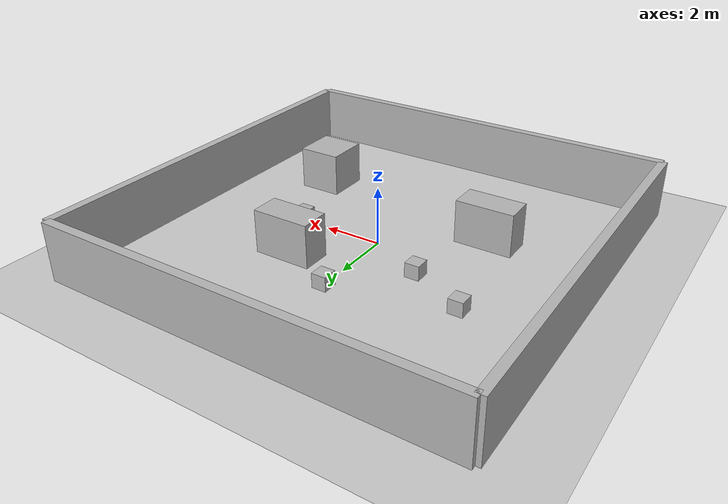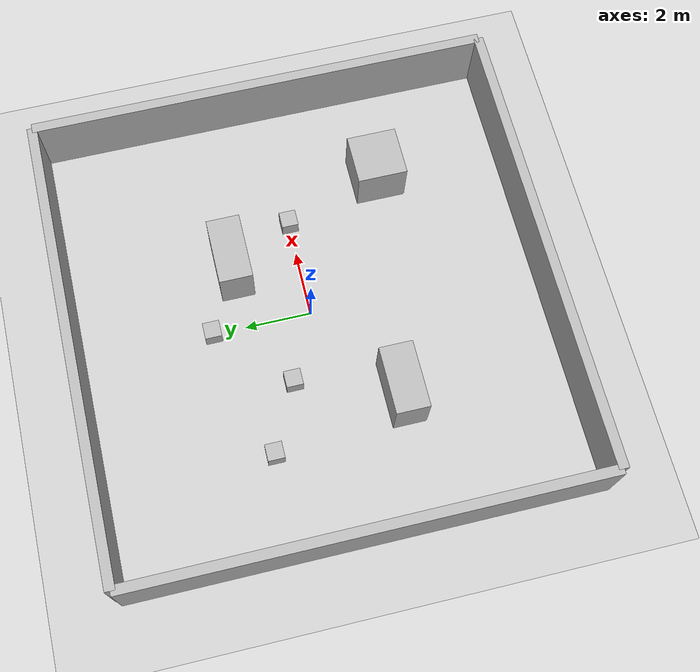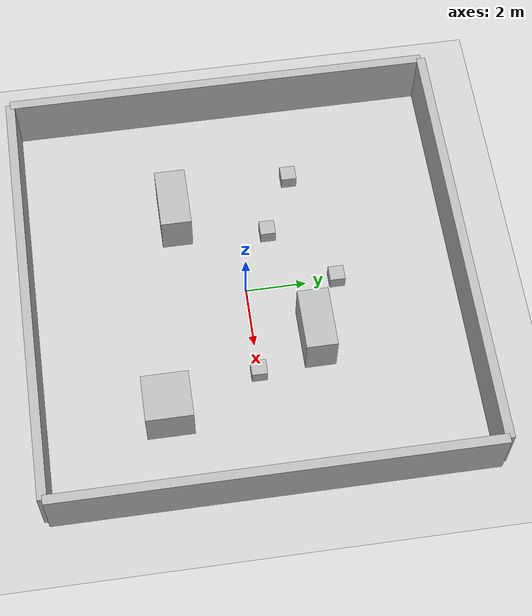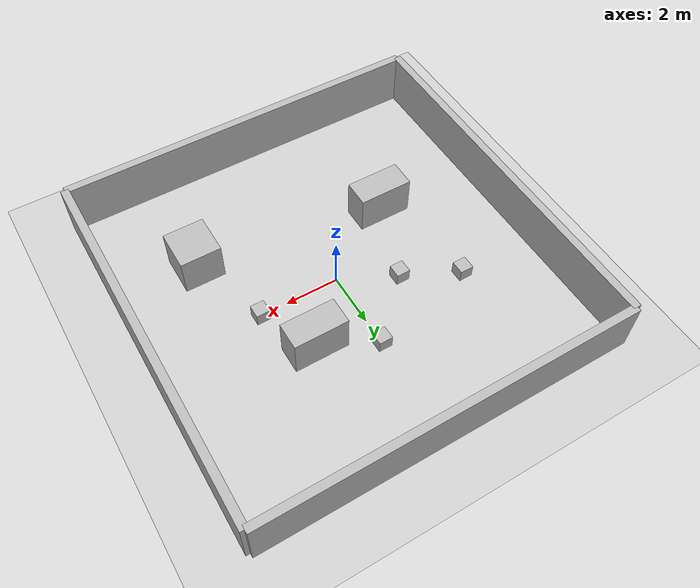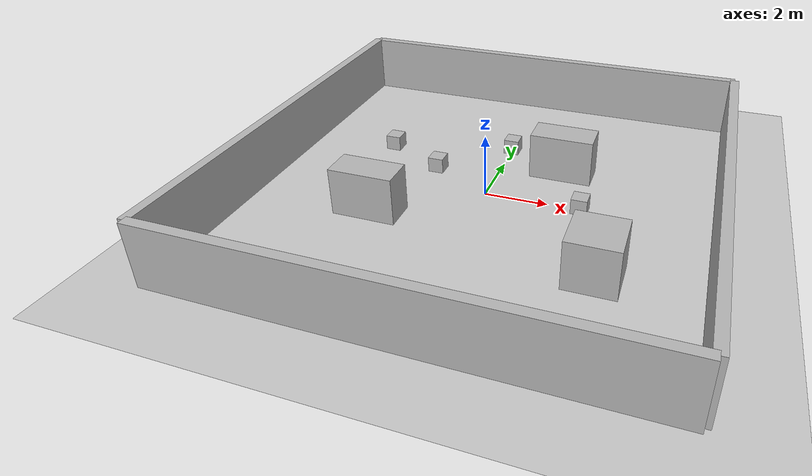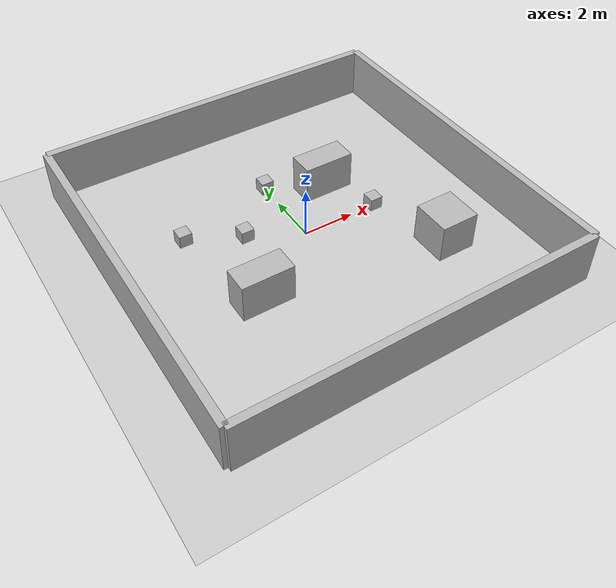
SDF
<?xml version="1.0" ?>
<sdf version="1.6">
  <world name="ambiente_fechado_obstaculos_reduzido">

    <include>
      <uri>model://sun</uri>
    </include>

    <include>
      <uri>model://ground_plane</uri>
    </include>

    <physics type="ode">
      <real_time_update_rate>1000</real_time_update_rate>
      <max_step_size>0.001</max_step_size>
    </physics>

    <model name="wall_north">
      <static>true</static>
      <link name="link">
        <pose>0 7 1 0 0 0</pose>
        <collision name="collision">
          <geometry>
            <box>
              <size>14 0.3 2</size>
            </box>
          </geometry>
        </collision>
        <visual name="visual">
          <geometry>
            <box>
              <size>14 0.3 2</size>
            </box>
          </geometry>
        </visual>
      </link>
    </model>

    <model name="wall_south">
      <static>true</static>
      <link name="link">
        <pose>0 -7 1 0 0 0</pose>
        <collision name="collision">
          <geometry>
            <box>
              <size>14 0.3 2</size>
            </box>
          </geometry>
        </collision>
        <visual name="visual">
          <geometry>
            <box>
              <size>14 0.3 2</size>
            </box>
          </geometry>
        </visual>
      </link>
    </model>

    <model name="wall_east">
      <static>true</static>
      <link name="link">
        <pose>7 0 1 0 0 0</pose>
        <collision name="collision">
          <geometry>
            <box>
              <size>0.3 14 2</size>
            </box>
          </geometry>
        </collision>
        <visual name="visual">
          <geometry>
            <box>
              <size>0.3 14 2</size>
            </box>
          </geometry>
        </visual>
      </link>
    </model>

    <model name="wall_west">
      <static>true</static>
      <link name="link">
        <pose>-7 0 1 0 0 0</pose>
        <collision name="collision">
          <geometry>
            <box>
              <size>0.3 14 2</size>
            </box>
          </geometry>
        </collision>
        <visual name="visual">
          <geometry>
            <box>
              <size>0.3 14 2</size>
            </box>
          </geometry>
        </visual>
      </link>
    </model>

    <model name="mesa_1">
      <static>true</static>
      <link name="link">
        <pose>2 2 0.75 0 0 0</pose>
        <collision name="collision">
          <geometry>
            <box>
              <size>2 1 1.5</size>
            </box>
          </geometry>
        </collision>
        <visual name="visual">
          <geometry>
            <box>
              <size>2 1 1.5</size>
            </box>
          </geometry>
        </visual>
      </link>
    </model>

    <model name="mesa_2">
      <static>true</static>
      <link name="link">
        <pose>-3 -2 0.75 0 0 0</pose>
        <collision name="collision">
          <geometry>
            <box>
              <size>2 1 1.5</size>
            </box>
          </geometry>
        </collision>
        <visual name="visual">
          <geometry>
            <box>
              <size>2 1 1.5</size>
            </box>
          </geometry>
        </visual>
      </link>
    </model>

    <model name="mesa_3">
      <static>true</static>
      <link name="link">
        <pose>4 -3 0.75 0 0 0</pose>
        <collision name="collision">
          <geometry>
            <box>
              <size>1.5 1.5 1.5</size>
            </box>
          </geometry>
        </collision>
        <visual name="visual">
          <geometry>
            <box>
              <size>1.5 1.5 1.5</size>
            </box>
          </geometry>
        </visual>
      </link>
    </model>

    <model name="caixa_1">
      <static>true</static>
      <link name="link">
        <pose>0 3 0.25 0 0 0</pose>
        <collision name="collision">
          <geometry>
            <box>
              <size>0.5 0.5 0.5</size>
            </box>
          </geometry>
        </collision>
        <visual name="visual">
          <geometry>
            <box>
              <size>0.5 0.5 0.5</size>
            </box>
          </geometry>
        </visual>
      </link>
    </model>

    <model name="caixa_2">
      <static>true</static>
      <link name="link">
        <pose>-2 1 0.25 0 0 0</pose>
        <collision name="collision">
          <geometry>
            <box>
              <size>0.5 0.5 0.5</size>
            </box>
          </geometry>
        </collision>
        <visual name="visual">
          <geometry>
            <box>
              <size>0.5 0.5 0.5</size>
            </box>
          </geometry>
        </visual>
      </link>
    </model>

    <model name="caixa_3">
      <static>true</static>
      <link name="link">
        <pose>3 0 0.25 0 0 0</pose>
        <collision name="collision">
          <geometry>
            <box>
              <size>0.5 0.5 0.5</size>
            </box>
          </geometry>
        </collision>
        <visual name="visual">
          <geometry>
            <box>
              <size>0.5 0.5 0.5</size>
            </box>
          </geometry>
        </visual>
      </link>
    </model>

    <model name="caixa_4">
      <static>true</static>
      <link name="link">
        <pose>-4 2 0.25 0 0 0</pose>
        <collision name="collision">
          <geometry>
            <box>
              <size>0.5 0.5 0.5</size>
            </box>
          </geometry>
        </collision>
        <visual name="visual">
          <geometry>
            <box>
              <size>0.5 0.5 0.5</size>
            </box>
          </geometry>
        </visual>
      </link>
    </model>

  </world>
</sdf>
